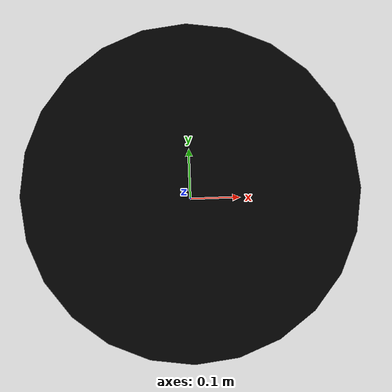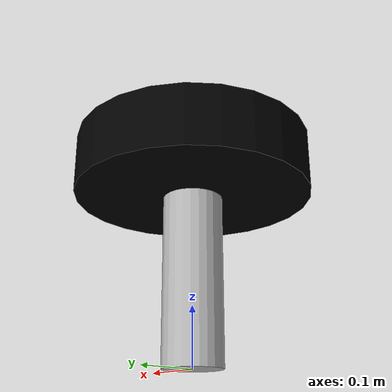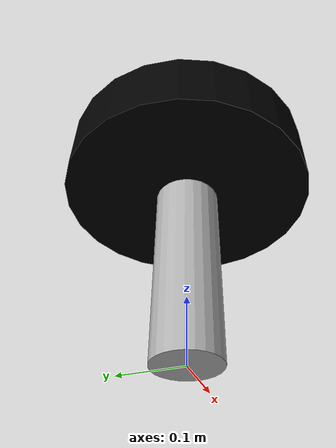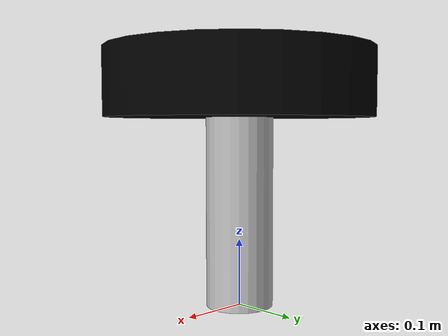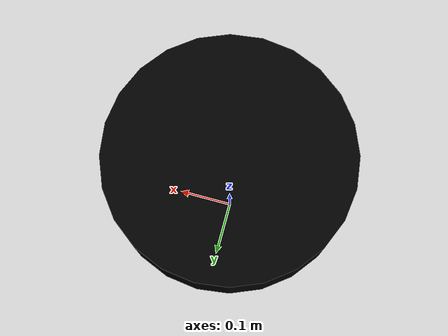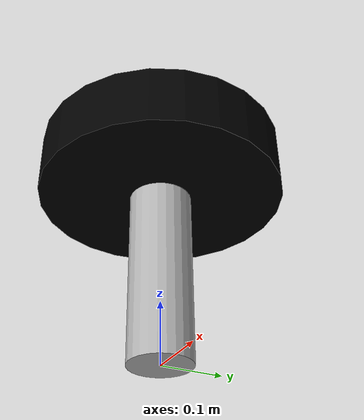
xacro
<?xml version="1.0"?>
<robot name="wheel_robot" xmlns:xacro="http://www.ros.org/wiki/xacro">
  <!-- Base link (vertical shaft fixed to the ground) -->
  <link name="base_link">
    <visual>
      <origin xyz="0 0 0.1667" rpy="0 0 0"/>
      <geometry>
        <cylinder radius="0.05" length="0.3333"/>
      </geometry>
      <material name="silver">
        <color rgba="0.7 0.7 0.7 1"/>
      </material>
    </visual>
    <collision>
      <origin xyz="0 0 0.1667" rpy="0 0 0"/>
      <geometry>
        <cylinder radius="0.05" length="0.3333"/>
      </geometry>
    </collision>
    <inertial>
      <mass value="1.0"/>
      <inertia ixx="0.0056" ixy="0" ixz="0" iyy="0.0056" iyz="0" izz="0.00125"/>
    </inertial>
  </link>

  <!-- Wheel link (larger cylinder on top) -->
  <link name="wheel_link">
    <visual>
      <origin xyz="0 0 0" rpy="0 0 0"/>
      <geometry>
        <cylinder radius="0.2" length="0.1"/>
      </geometry>
      <material name="black">
        <color rgba="0 0 0 1"/>
      </material>
    </visual>
    <collision>
      <origin xyz="0 0 0" rpy="0 0 0"/>
      <geometry>
        <cylinder radius="0.3" length="0.06"/>
      </geometry>
    </collision>
    <inertial>
      <mass value="0.5"/>
      <inertia ixx="0.0038" ixy="0" ixz="0" iyy="0.0038" iyz="0" izz="0.0225"/>
    </inertial>
  </link>

  <!-- Continuous joint between base and wheel -->
  <joint name="shaft_to_wheel" type="continuous">
    <parent link="base_link"/>
    <child link="wheel_link"/>
    <origin xyz="0 0 0.3333" rpy="0 0 0"/>
    <axis xyz="0 0 1"/>
    <limit velocity="50" effort="0"/>
    <dynamics damping="0.1" friction="0.0"/>
  </joint>

  <!-- Fix base_link to the world -->
  <link name="world"/>
  <joint name="base_to_world" type="fixed">
    <parent link="world"/>
    <child link="base_link"/>
    <origin xyz="0 0 0" rpy="0 0 0"/>
  </joint>
</robot>
